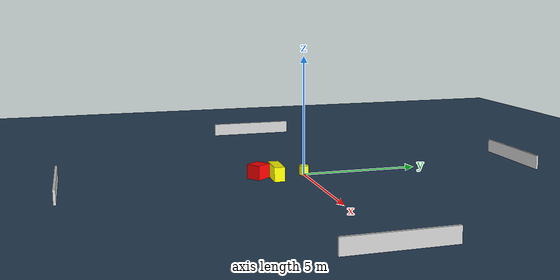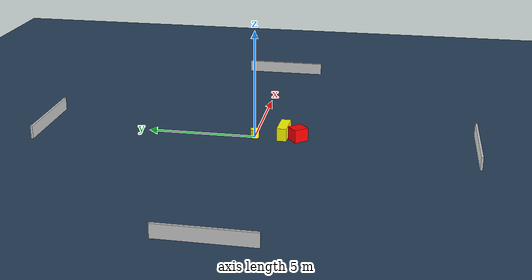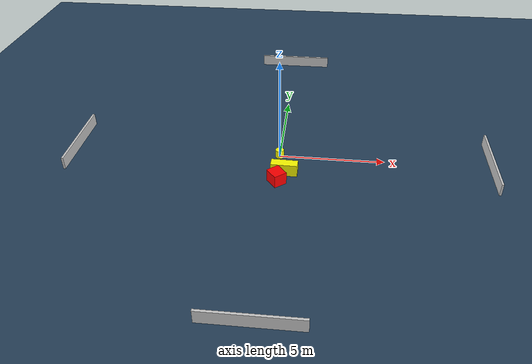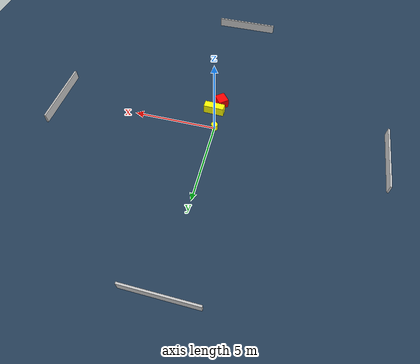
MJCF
<?xml version="1.0" ?>
<mujoco model="generated_environment">
  <option timestep="0.01" integrator="RK4" cone="elliptic"/>
  <default>
    <geom density="1"/>
  </default>
  <asset>
    <texture builtin="gradient" height="3072" name="skybox" rgb1="0.3 0.5 0.7" rgb2="0 0 0" type="skybox" width="512"/>
    <texture builtin="checker" height="300" name="groundplane" rgb1="0.2 0.3 0.4" rgb2="0.1 0.2 0.3" type="2d" width="300"/>
    <material name="groundplane" reflectance="0.2" texrepeat="5 5" texture="groundplane"/>
  </asset>
  <worldbody>
    <light dir="0 0 -1" directional="true" pos="0 0 1.5"/>
    <geom condim="3" friction="0.5 0.005 0.001" material="groundplane" name="floor" pos="0 0 0" size="0 0 0.05" type="plane"/>
    <body name="walls">
      <geom name="wall_1" condim="4" pos="-10.0 0.0 0.3" rgba="0.800000011920929 0.800000011920929 0.800000011920929 1.0" size="0.05 2.0 0.3" type="box"/>
      <geom name="wall_2" condim="4" pos="10.0 0.0 0.3" rgba="0.800000011920929 0.800000011920929 0.800000011920929 1.0" size="0.05 2.0 0.3" type="box"/>
      <geom name="wall_3" condim="4" pos="0.0 -10.0 0.3" rgba="0.800000011920929 0.800000011920929 0.800000011920929 1.0" size="2.0 0.05 0.3" type="box"/>
      <geom name="wall_4" condim="4" pos="0.0 10.0 0.3" rgba="0.800000011920929 0.800000011920929 0.800000011920929 1.0" size="2.0 0.05 0.3" type="box"/>
    </body>
    <body name="robot">
      <joint name="joint_x" type="slide" pos="0 0 0" axis="1 0 0"/>
      <joint name="joint_y" type="slide" pos="0 0 0" axis="0 1 0"/>
      <geom name="robot" type="cylinder" pos="0.0 0.0 0.2" size="0.2 0.2 0.0" mass="5.0" friction="1.0 0.005 0.0001" condim="4" rgba="1.0 1.0 0.0 1.0"/>
    </body>
    <body name="obstacle_1_movable">
      <geom name="obstacle_1_movable" condim="4" pos="0.3336286748240264 -1.2992894298194968 0.3" euler="0 0 87.97089709024402" friction="0.0 0.005 0.001" rgba="1.0 1.0 0.0 1.0" size="0.22227759033702355 0.6180355901598897 0.3" type="box" mass="0.1"/>
      <joint type="free"/>
    </body>
    <body name="obstacle_2_static">
      <geom name="obstacle_2_static" condim="4" pos="0.04456897306870896 -1.9959508513507642 0.3" euler="0 0 308.4351526254383" friction="0.0 0.005 0.001" rgba="1.0 0.0 0.0 1.0" size="0.34623845658553765 0.3147204428233738 0.3" type="box"/>
    </body>
  </worldbody>
  <actuator>
    <motor name="actuator_x" joint="joint_x" gear="1" ctrlrange="-1 1"/>
    <motor name="actuator_y" joint="joint_y" gear="1" ctrlrange="-1 1"/>
  </actuator>
</mujoco>
